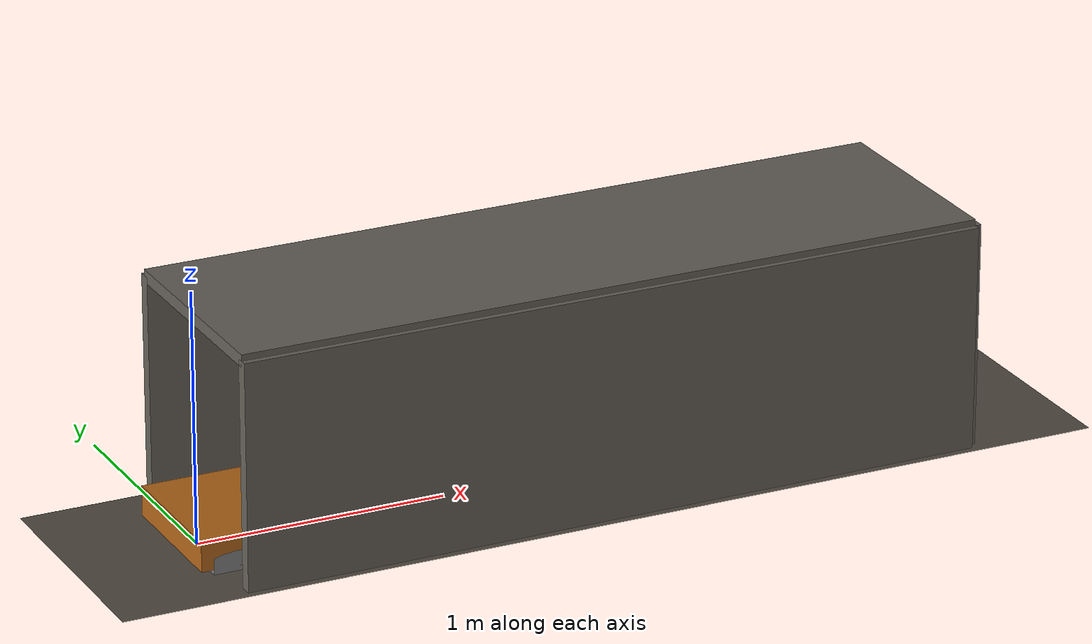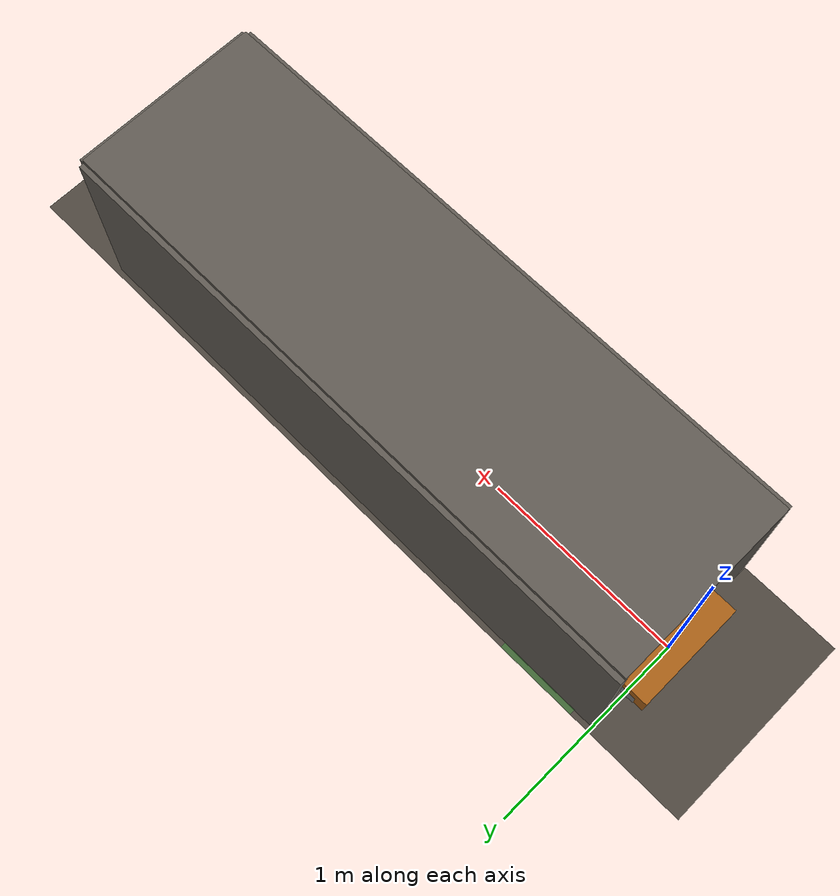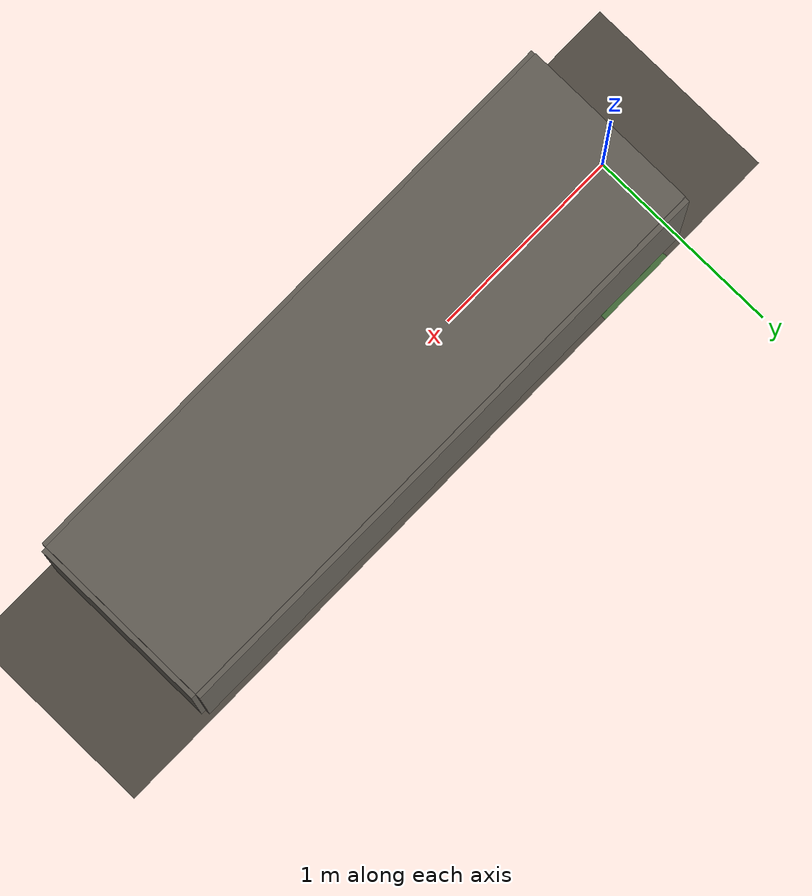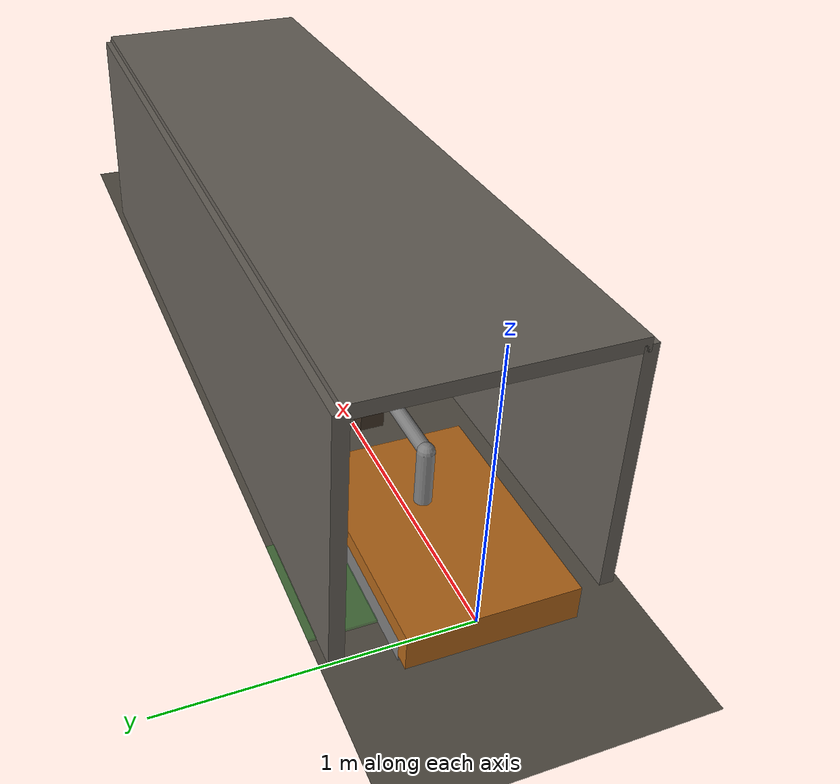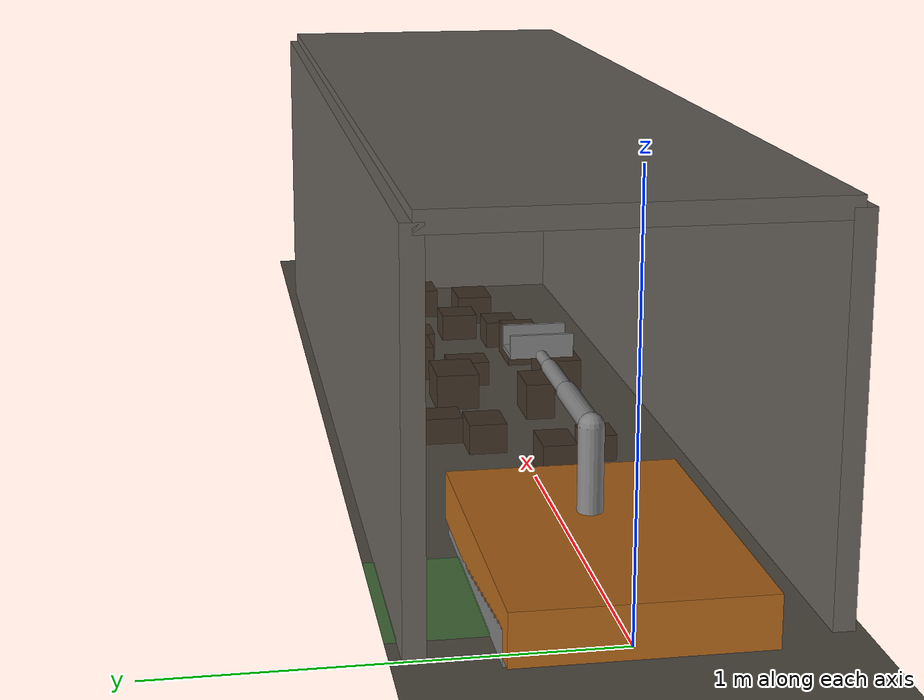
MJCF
<mujoco model="sewer_robot">
  <compiler angle="radian" autolimits="true"/>

  <option timestep="0.002" gravity="0 0 -9.81" integrator="implicit">
    <flag contact="enable"/>
  </option>

  <default>
    <joint damping="0.5" armature="0.1"/>
    <geom condim="3" friction="1.0 0.5 0.001" solref="0.02 1"/>
    <motor ctrlrange="-1 1" ctrllimited="true"/>
  </default>

  <asset>
    <texture name="pipe_tex" type="2d" builtin="flat" rgb1="0.4 0.38 0.35"
             rgb2="0.35 0.33 0.3" width="256" height="256"/>
    <material name="pipe_mat" texture="pipe_tex" specular="0.1" shininess="0.1"/>
    <texture name="sludge_tex" type="2d" builtin="flat" rgb1="0.25 0.2 0.15"
             rgb2="0.3 0.22 0.12" width="64" height="64"/>
    <material name="sludge_mat" texture="sludge_tex" specular="0.0" shininess="0.0"/>
    <texture name="robot_tex" type="2d" builtin="flat" rgb1="0.7 0.4 0.1"
             rgb2="0.6 0.35 0.1" width="64" height="64"/>
    <material name="robot_mat" texture="robot_tex" specular="0.3" shininess="0.5"/>
    <texture name="metal_tex" type="2d" builtin="flat" rgb1="0.5 0.5 0.5"
             rgb2="0.45 0.45 0.45" width="64" height="64"/>
    <material name="metal_mat" texture="metal_tex" specular="0.5" shininess="0.7"/>
    <texture name="floor_tex" type="2d" builtin="checker" rgb1="0.3 0.28 0.25"
             rgb2="0.35 0.32 0.28" width="256" height="256"/>
    <material name="floor_mat" texture="floor_tex" texrepeat="4 4"/>
  </asset>

  <worldbody>
    <!-- Ambient light -->
    <light name="ambient" pos="1.5 0 0.8" dir="0 0 -1" diffuse="0.6 0.6 0.6"
           specular="0.2 0.2 0.2" directional="false"/>
    <light name="headlight" pos="0.5 0 0.4" dir="1 0 -0.3" diffuse="0.4 0.4 0.4"
           specular="0.1 0.1 0.1" directional="false"/>

    <!-- Ground plane (pipe floor) -->
    <geom name="floor" type="plane" size="2 0.5 0.01" pos="1.5 0 0"
          material="floor_mat" contype="1" conaffinity="1"/>

    <!-- Pipe walls: approximated as box geoms forming a trough/tunnel -->
    <!-- Left wall -->
    <geom name="pipe_wall_left" type="box" size="1.5 0.025 0.45" pos="1.5 -0.45 0.45"
          material="pipe_mat" contype="1" conaffinity="1"/>
    <!-- Right wall -->
    <geom name="pipe_wall_right" type="box" size="1.5 0.025 0.45" pos="1.5 0.45 0.45"
          material="pipe_mat" contype="1" conaffinity="1"/>
    <!-- Ceiling -->
    <geom name="pipe_ceiling" type="box" size="1.5 0.45 0.025" pos="1.5 0 0.9"
          material="pipe_mat" contype="1" conaffinity="1"/>
    <!-- Back wall (closed end) -->
    <geom name="pipe_back" type="box" size="0.025 0.45 0.45" pos="3.0 0 0.45"
          material="pipe_mat" contype="1" conaffinity="1"/>

    <!-- Deposit zone marker (beside robot, within arm reach) -->
    <site name="deposit_zone" type="box" size="0.2 0.2 0.005" pos="0.3 0.3 0.001"
          rgba="0.2 0.8 0.2 0.3"/>

    <!-- ============ ROBOT ============ -->
    <body name="base" pos="0.3 0 0.08">
      <joint name="base_x" type="slide" axis="1 0 0" range="-0.5 3.5" damping="2"/>
      <joint name="base_y" type="slide" axis="0 1 0" range="-0.4 0.4" damping="0.5"/>
      <joint name="base_yaw" type="hinge" axis="0 0 1" range="-1.57 1.57" damping="1"/>
      <geom name="base_body" type="box" size="0.4 0.28 0.06" mass="15"
            material="robot_mat" contype="1" conaffinity="1"
            friction="0.1 0.05 0.001"/>
      <!-- Left track -->
      <geom name="track_l" type="box" size="0.35 0.03 0.04" pos="0 -0.25 -0.04"
            material="metal_mat" contype="1" conaffinity="1" mass="2"
            friction="0.3 0.1 0.001"/>
      <!-- Right track -->
      <geom name="track_r" type="box" size="0.35 0.03 0.04" pos="0 0.25 -0.04"
            material="metal_mat" contype="1" conaffinity="1" mass="2"
            friction="0.3 0.1 0.001"/>

      <!-- Front camera -->
      <camera name="front_cam" pos="0.4 0 0.1" xyaxes="0 -1 0 0 0 1"
              fovy="60" resolution="640 480"/>

      <!-- ============ ARM ============ -->
      <!-- Shoulder (J1): pitch, mounted on top of base -->
      <body name="shoulder" pos="0.1 0 0.06">
        <joint name="j1" type="hinge" axis="0 1 0" range="-2.0 2.0"/>
        <geom name="link1" type="capsule" fromto="0 0 0 0 0 0.2" size="0.03"
              mass="1.5" material="metal_mat"/>

        <!-- Upper arm (J2): pitch -->
        <body name="upper_arm" pos="0 0 0.2">
          <joint name="j2" type="hinge" axis="0 1 0" range="-2.5 2.5"/>
          <geom name="link2" type="capsule" fromto="0 0 0 0.25 0 0" size="0.025"
                mass="1.0" material="metal_mat"/>

          <!-- Forearm (J3): pitch -->
          <body name="forearm" pos="0.25 0 0">
            <joint name="j3" type="hinge" axis="0 1 0" range="-2.5 2.5"/>
            <geom name="link3" type="capsule" fromto="0 0 0 0.2 0 0" size="0.02"
                  mass="0.8" material="metal_mat"/>

            <!-- Wrist (J4): pitch -->
            <body name="wrist" pos="0.2 0 0">
              <joint name="j4" type="hinge" axis="0 1 0" range="-3.14 3.14"/>
              <geom name="link4" type="capsule" fromto="0 0 0 0.1 0 0" size="0.015"
                    mass="0.5" material="metal_mat"/>

              <!-- Wrist camera -->
              <camera name="wrist_cam" pos="0.05 0 0.03" xyaxes="0 -1 0 0 0 1"
                      fovy="60" resolution="224 224"/>

              <!-- End-effector site -->
              <site name="ee_site" pos="0.1 0 0" size="0.01"/>

              <!-- Scoop -->
              <body name="scoop" pos="0.1 0 0">
                <joint name="scoop_joint" type="hinge" axis="0 1 0"
                       range="-0.5 1.2"/>
                <!-- Scoop body: a shallow box acting as bucket -->
                <geom name="scoop_base" type="box" size="0.05 0.08 0.005"
                      pos="0.05 0 0" mass="0.3" material="metal_mat"
                      contype="1" conaffinity="1"/>
                <!-- Scoop front lip -->
                <geom name="scoop_lip" type="box" size="0.005 0.08 0.03"
                      pos="0.1 0 0.025" mass="0.1" material="metal_mat"
                      contype="1" conaffinity="1"/>
                <!-- Scoop back wall -->
                <geom name="scoop_back" type="box" size="0.005 0.08 0.03"
                      pos="0.0 0 0.025" mass="0.1" material="metal_mat"
                      contype="1" conaffinity="1"/>
                <site name="scoop_site" pos="0.05 0 0.01" size="0.01"/>
              </body>
            </body>
          </body>
        </body>
      </body>
    </body>

    <!-- ============ SLUDGE BLOCKS ============ -->
    <!-- Default sludge blocks — positions randomized at runtime -->
    <body name="sludge_0" pos="1.2 0.1 0.06">
      <freejoint name="sludge_0_joint"/>
      <geom name="sludge_0_geom" type="box" size="0.06 0.05 0.04" mass="0.5"
            material="sludge_mat" contype="1" conaffinity="1"/>
    </body>
    <body name="sludge_1" pos="1.5 -0.1 0.06">
      <freejoint name="sludge_1_joint"/>
      <geom name="sludge_1_geom" type="box" size="0.07 0.04 0.05" mass="0.6"
            material="sludge_mat" contype="1" conaffinity="1"/>
    </body>
    <body name="sludge_2" pos="1.8 0.05 0.05">
      <freejoint name="sludge_2_joint"/>
      <geom name="sludge_2_geom" type="box" size="0.05 0.06 0.035" mass="0.4"
            material="sludge_mat" contype="1" conaffinity="1"/>
    </body>
    <body name="sludge_3" pos="2.0 -0.15 0.07">
      <freejoint name="sludge_3_joint"/>
      <geom name="sludge_3_geom" type="box" size="0.08 0.05 0.05" mass="0.7"
            material="sludge_mat" contype="1" conaffinity="1"/>
    </body>
    <body name="sludge_4" pos="2.3 0.0 0.055">
      <freejoint name="sludge_4_joint"/>
      <geom name="sludge_4_geom" type="box" size="0.055 0.055 0.04" mass="0.45"
            material="sludge_mat" contype="1" conaffinity="1"/>
    </body>
    <body name="sludge_5" pos="1.0 -0.05 0.06">
      <freejoint name="sludge_5_joint"/>
      <geom name="sludge_5_geom" type="box" size="0.065 0.045 0.045" mass="0.55"
            material="sludge_mat" contype="1" conaffinity="1"/>
    </body>
    <body name="sludge_6" pos="1.3 0.2 0.05">
      <freejoint name="sludge_6_joint"/>
      <geom name="sludge_6_geom" type="box" size="0.05 0.05 0.035" mass="0.4"
            material="sludge_mat" contype="1" conaffinity="1"/>
    </body>
    <body name="sludge_7" pos="1.7 -0.2 0.065">
      <freejoint name="sludge_7_joint"/>
      <geom name="sludge_7_geom" type="box" size="0.07 0.06 0.05" mass="0.65"
            material="sludge_mat" contype="1" conaffinity="1"/>
    </body>
    <body name="sludge_8" pos="2.1 0.15 0.055">
      <freejoint name="sludge_8_joint"/>
      <geom name="sludge_8_geom" type="box" size="0.06 0.04 0.04" mass="0.5"
            material="sludge_mat" contype="1" conaffinity="1"/>
    </body>
    <body name="sludge_9" pos="2.5 -0.08 0.06">
      <freejoint name="sludge_9_joint"/>
      <geom name="sludge_9_geom" type="box" size="0.075 0.055 0.045" mass="0.6"
            material="sludge_mat" contype="1" conaffinity="1"/>
    </body>
    <body name="sludge_10" pos="1.1 -0.18 0.05">
      <freejoint name="sludge_10_joint"/>
      <geom name="sludge_10_geom" type="box" size="0.05 0.045 0.035" mass="0.35"
            material="sludge_mat" contype="1" conaffinity="1"/>
    </body>
    <body name="sludge_11" pos="1.6 0.12 0.07">
      <freejoint name="sludge_11_joint"/>
      <geom name="sludge_11_geom" type="box" size="0.08 0.06 0.05" mass="0.7"
            material="sludge_mat" contype="1" conaffinity="1"/>
    </body>
    <body name="sludge_12" pos="2.2 -0.12 0.055">
      <freejoint name="sludge_12_joint"/>
      <geom name="sludge_12_geom" type="box" size="0.06 0.05 0.04" mass="0.5"
            material="sludge_mat" contype="1" conaffinity="1"/>
    </body>
    <body name="sludge_13" pos="2.6 0.08 0.06">
      <freejoint name="sludge_13_joint"/>
      <geom name="sludge_13_geom" type="box" size="0.065 0.05 0.045" mass="0.55"
            material="sludge_mat" contype="1" conaffinity="1"/>
    </body>
    <body name="sludge_14" pos="1.9 0.2 0.065">
      <freejoint name="sludge_14_joint"/>
      <geom name="sludge_14_geom" type="box" size="0.07 0.055 0.05" mass="0.6"
            material="sludge_mat" contype="1" conaffinity="1"/>
    </body>
  </worldbody>

  <actuator>
    <!-- Base actuators -->
    <velocity name="base_fwd" joint="base_x" kv="500" ctrlrange="-1 1"/>
    <velocity name="base_lat" joint="base_y" kv="500" ctrlrange="-1 1"/>
    <velocity name="base_yaw" joint="base_yaw" kv="100" ctrlrange="-1 1"/>
    <!-- Arm joint actuators -->
    <position name="j1_act" joint="j1" kp="50" ctrlrange="-2.0 2.0"/>
    <position name="j2_act" joint="j2" kp="40" ctrlrange="-2.5 2.5"/>
    <position name="j3_act" joint="j3" kp="30" ctrlrange="-2.5 2.5"/>
    <position name="j4_act" joint="j4" kp="20" ctrlrange="-3.14 3.14"/>
    <!-- Scoop actuator -->
    <position name="scoop_act" joint="scoop_joint" kp="15" ctrlrange="-0.5 1.2"/>
  </actuator>

  <sensor>
    <jointpos name="j1_pos" joint="j1"/>
    <jointpos name="j2_pos" joint="j2"/>
    <jointpos name="j3_pos" joint="j3"/>
    <jointpos name="j4_pos" joint="j4"/>
    <jointvel name="j1_vel" joint="j1"/>
    <jointvel name="j2_vel" joint="j2"/>
    <jointvel name="j3_vel" joint="j3"/>
    <jointvel name="j4_vel" joint="j4"/>
    <framepos name="ee_pos" objtype="site" objname="ee_site"/>
    <framequat name="ee_quat" objtype="site" objname="ee_site"/>
    <framepos name="base_pos" objtype="body" objname="base"/>
  </sensor>
</mujoco>
